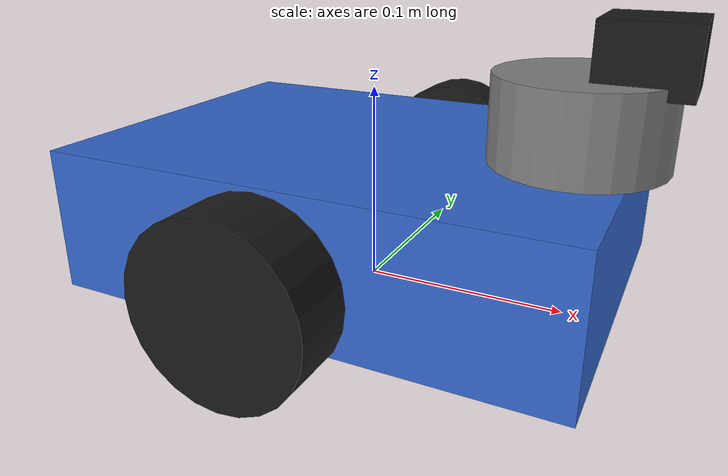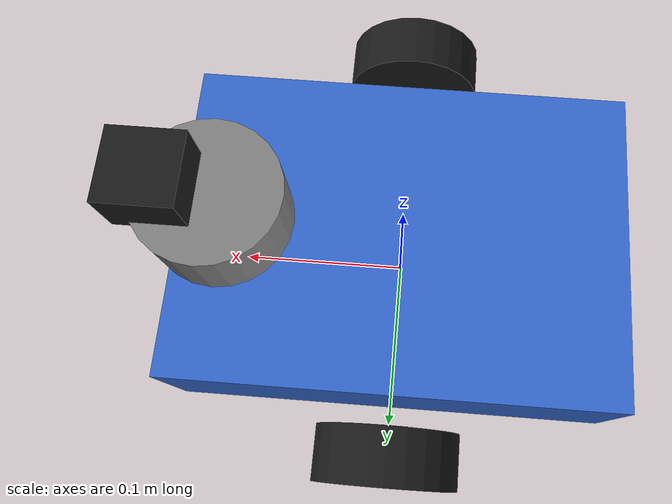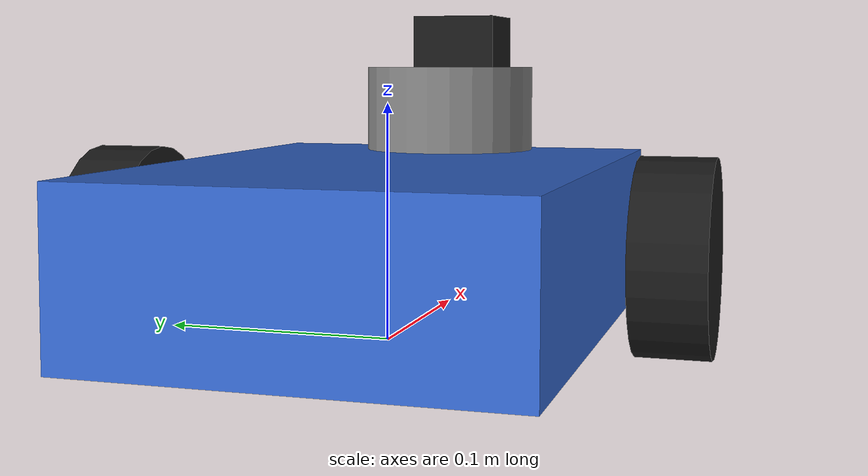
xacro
<?xml version="1.0"?>
<robot name="diffbot" xmlns:xacro="http://www.ros.org/wiki/xacro">

  <!-- ── Properties ── -->
  <xacro:property name="base_width"  value="0.18"/>
  <xacro:property name="base_length" value="0.25"/>
  <xacro:property name="base_height" value="0.07"/>
  <xacro:property name="wheel_radius" value="0.04"/>
  <xacro:property name="wheel_width"  value="0.03"/>
  <xacro:property name="wheel_sep"    value="0.24"/>
  <xacro:property name="caster_radius" value="0.02"/>

  <!-- ── Materials ── -->
  <material name="blue">  <color rgba="0.2 0.4 0.8 1.0"/></material>
  <material name="gray">  <color rgba="0.5 0.5 0.5 1.0"/></material>
  <material name="black"> <color rgba="0.1 0.1 0.1 1.0"/></material>

  <!-- ══════════════════ BASE LINK ══════════════════ -->
  <link name="base_footprint">
    <inertial>
      <mass value="0.001"/>
      <inertia ixx="0.000001" ixy="0" ixz="0"
               iyy="0.000001" iyz="0"
               izz="0.000001"/>
    </inertial>
  </link>

  <joint name="base_joint" type="fixed">
    <parent link="base_footprint"/>
    <child  link="base_link"/>
    <origin xyz="0 0 ${wheel_radius}" rpy="0 0 0"/>
  </joint>

  <link name="base_link">
    <visual>
      <geometry>
        <box size="${base_length} ${base_width} ${base_height}"/>
      </geometry>
      <material name="blue"/>
    </visual>
    <collision>
      <geometry>
        <box size="${base_length} ${base_width} ${base_height}"/>
      </geometry>
    </collision>
    <inertial>
      <mass value="5.0"/>
      <inertia ixx="0.05" ixy="0" ixz="0"
               iyy="0.06" iyz="0"
               izz="0.08"/>
    </inertial>
  </link>

  <!-- ══════════════════ WHEEL MACRO ══════════════════ -->
  <xacro:macro name="wheel" params="prefix y_reflect">
    <link name="${prefix}_wheel">
      <visual>
        <geometry>
          <cylinder radius="${wheel_radius}" length="${wheel_width}"/>
        </geometry>
        <origin xyz="0 0 0" rpy="${pi/2} 0 0"/>
        <material name="black"/>
      </visual>
      <collision>
        <geometry>
          <cylinder radius="${wheel_radius}" length="${wheel_width}"/>
        </geometry>
        <origin xyz="0 0 0" rpy="${pi/2} 0 0"/>
      </collision>
      <inertial>
        <mass value="0.5"/>
        <inertia ixx="0.001" ixy="0" ixz="0"
                 iyy="0.001" iyz="0"
                 izz="0.002"/>
      </inertial>
    </link>

    <joint name="${prefix}_wheel_joint" type="continuous">
      <parent link="base_link"/>
      <child  link="${prefix}_wheel"/>
      <origin xyz="0 ${y_reflect * wheel_sep/2} 0" rpy="0 0 0"/>
      <axis   xyz="0 1 0"/>
    </joint>

    <gazebo reference="${prefix}_wheel">
      <mu1>1000.0</mu1>
      <mu2>1000.0</mu2>
      <kp>1000000.0</kp>
      <kd>100.0</kd>
      <minDepth>0.001</minDepth>
    </gazebo>
  </xacro:macro>

  <xacro:wheel prefix="left"  y_reflect=" 1"/>
  <xacro:wheel prefix="right" y_reflect="-1"/>

  <!-- ══════════════════ CASTER WHEEL ══════════════════ -->
  <link name="caster_wheel">
    <visual>
      <geometry><sphere radius="${caster_radius}"/></geometry>
      <material name="gray"/>
    </visual>
    <collision>
      <geometry><sphere radius="${caster_radius}"/></geometry>
    </collision>
    <inertial>
      <mass value="0.1"/>
      <inertia ixx="0.00001" ixy="0" ixz="0"
               iyy="0.00001" iyz="0"
               izz="0.00001"/>
    </inertial>
  </link>

  <joint name="caster_joint" type="fixed">
    <parent link="base_link"/>
    <child  link="caster_wheel"/>
    <origin xyz="${-base_length/2 + 0.04} 0 ${-(wheel_radius - caster_radius)}" rpy="0 0 0"/>
  </joint>

  <!-- Caster friction override for free sliding -->
  <gazebo reference="caster_wheel">
    <mu1>0.0</mu1>
    <mu2>0.0</mu2>
    <kp>1000000.0</kp>
    <kd>100.0</kd>
    <minDepth>0.001</minDepth>
  </gazebo>

  <!-- ══════════════════ LIDAR ══════════════════ -->
  <link name="lidar_link">
    <visual>
      <geometry><cylinder radius="0.04" length="0.04"/></geometry>
      <material name="gray"/>
    </visual>
    <collision>
      <geometry><cylinder radius="0.04" length="0.04"/></geometry>
    </collision>
    <inertial>
      <mass value="0.2"/>
      <inertia ixx="0.001" ixy="0" ixz="0"
               iyy="0.001" iyz="0"
               izz="0.001"/>
    </inertial>
  </link>

  <joint name="lidar_joint" type="fixed">
    <parent link="base_link"/>
    <child  link="lidar_link"/>
    <origin xyz="0.1 0 ${base_height/2 + 0.02}" rpy="0 0 0"/>
  </joint>

  <!-- ══════════════════ CAMERA ══════════════════ -->
  <link name="camera_link">
    <visual>
      <geometry><box size="0.04 0.04 0.03"/></geometry>
      <material name="black"/>
    </visual>
    <collision>
      <geometry><box size="0.04 0.04 0.03"/></geometry>
    </collision>
    <inertial>
      <mass value="0.1"/>
      <inertia ixx="0.0001" ixy="0" ixz="0"
               iyy="0.0001" iyz="0"
               izz="0.0001"/>
    </inertial>
  </link>

  <joint name="camera_joint" type="fixed">
    <parent link="base_link"/>
    <child  link="camera_link"/>
    <origin xyz="${base_length/2} 0 ${base_height/2 + 0.05}" rpy="0 0 0"/>
  </joint>

  <link name="camera_optical_link"/>
  <joint name="camera_optical_joint" type="fixed">
    <parent link="camera_link"/>
    <child  link="camera_optical_link"/>
    <origin xyz="0 0 0" rpy="${-pi/2} 0 ${-pi/2}"/>
  </joint>

  <!-- ══════════════════ GAZEBO PLUGINS ══════════════════ -->

  <!-- Differential Drive Controller -->
  <gazebo>
    <plugin name="diff_drive" filename="libgazebo_ros_diff_drive.so">
      <update_rate>20</update_rate>
      <left_joint>left_wheel_joint</left_joint>
      <right_joint>right_wheel_joint</right_joint>
      <wheel_separation>${wheel_sep}</wheel_separation>
      <wheel_diameter>${2*wheel_radius}</wheel_diameter>
      <max_wheel_torque>20</max_wheel_torque>
      <max_wheel_acceleration>1.0</max_wheel_acceleration>
      <command_topic>cmd_vel</command_topic>
      <publish_odom>true</publish_odom>
      <publish_odom_tf>true</publish_odom_tf>
      <publish_wheel_tf>false</publish_wheel_tf>
      <publish_wheel_joint_state>true</publish_wheel_joint_state>
      <odometry_topic>odom</odometry_topic>
      <odometry_frame>odom</odometry_frame>
      <robot_base_frame>base_footprint</robot_base_frame>
    </plugin>
  </gazebo>

  <!-- LiDAR Plugin -->
  <gazebo reference="lidar_link">
    <sensor name="lidar" type="ray">
      <always_on>true</always_on>
      <visualize>true</visualize>
      <update_rate>10</update_rate>
      <ray>
        <scan>
          <horizontal>
            <samples>360</samples>
            <resolution>1.0</resolution>
            <min_angle>-3.14159</min_angle>
            <max_angle>3.14159</max_angle>
          </horizontal>
        </scan>
        <range>
          <min>0.12</min>
          <max>10.0</max>
          <resolution>0.015</resolution>
        </range>
        <noise>
          <type>gaussian</type>
          <mean>0.0</mean>
          <stddev>0.01</stddev>
        </noise>
      </ray>
      <plugin name="lidar_plugin" filename="libgazebo_ros_ray_sensor.so">
        <ros>
          <remapping>~/out:=scan</remapping>
        </ros>
        <output_type>sensor_msgs/LaserScan</output_type>
        <frame_name>lidar_link</frame_name>
      </plugin>
    </sensor>
  </gazebo>

  <!-- RGB Camera Plugin -->
  <gazebo reference="camera_link">
    <sensor name="camera" type="camera">
      <always_on>true</always_on>
      <visualize>true</visualize>
      <update_rate>30</update_rate>
      <camera>
        <horizontal_fov>1.3962634</horizontal_fov>
        <image>
          <width>640</width>
          <height>480</height>
          <format>R8G8B8</format>
        </image>
        <clip>
          <near>0.05</near>
          <far>20.0</far>
        </clip>
        <noise>
          <type>gaussian</type>
          <mean>0.0</mean>
          <stddev>0.007</stddev>
        </noise>
      </camera>
      <plugin name="camera_plugin" filename="libgazebo_ros_camera.so">
        <camera_name>camera</camera_name>
        <frame_name>camera_optical_link</frame_name>
        <hack_baseline>0.07</hack_baseline>
      </plugin>
    </sensor>
  </gazebo>

</robot>
